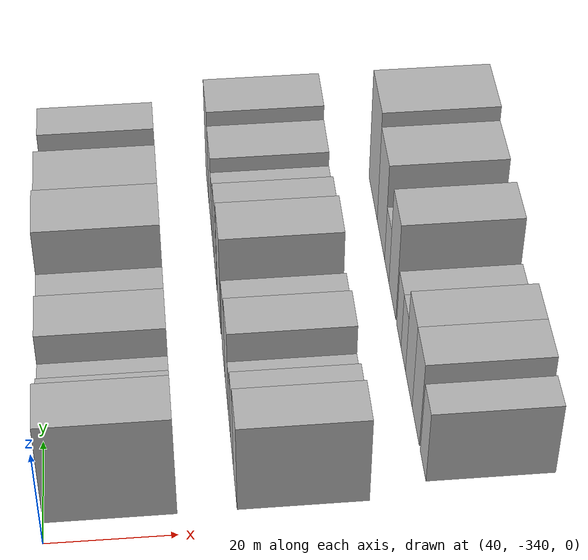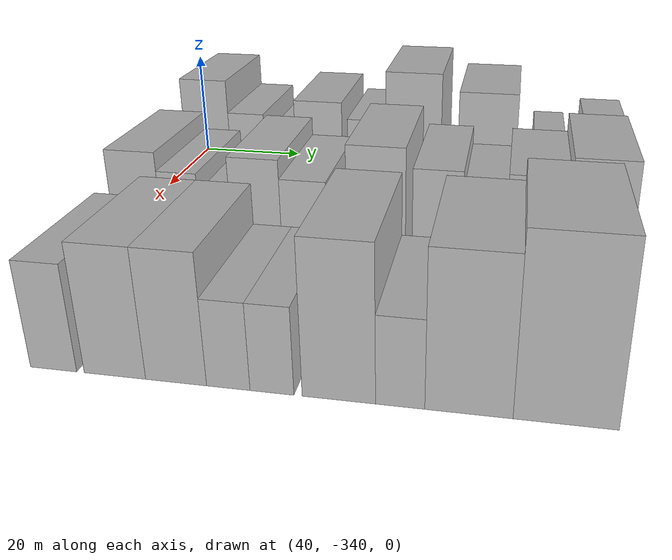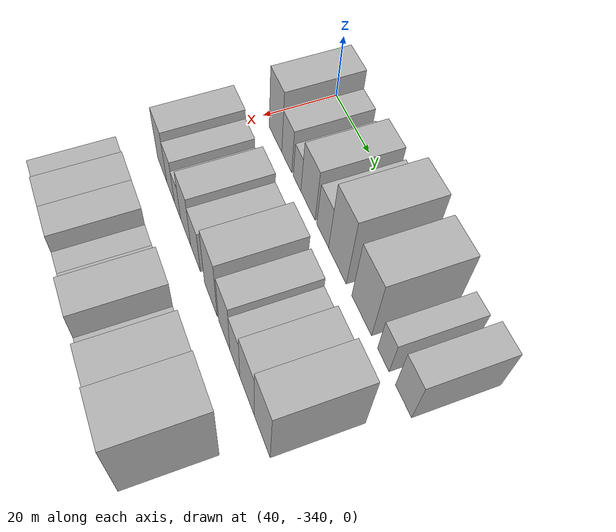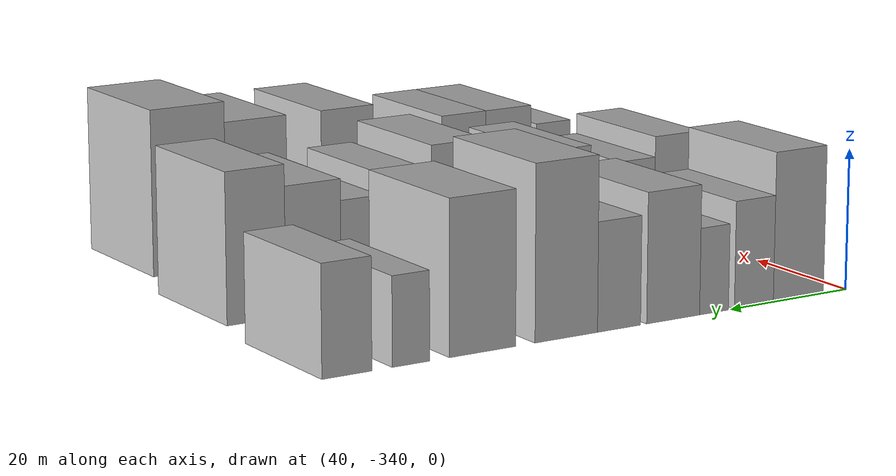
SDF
<sdf version="1.6">
 <world name="default">
  <model name="building_1">
   <static>1</static>
   <pose>50.0000 -331.6400 0 0.000000 0.000000 0.000000</pose>
   <link name="link">
    <pose>0 0 10.50 0 0 0</pose>
    <collision name="collision"><geometry><box><size>20.0000 8.7200 21.0000</size></box></geometry></collision>
    <visual name="visual">
     <cast_shadows>0</cast_shadows>
     <geometry><box><size>20.0000 8.7200 21.0000</size></box></geometry>
     <material>
      <script>
       <uri>model://HANNAS_wall/materials/scripts</uri>
       <uri>model://HANNAS_wall/materials/textures</uri>
       <name>vrc/HANNAS_wall</name>
      </script>
     </material>
    </visual>
   </link>
  </model>
  <model name="building_2">
   <static>1</static>
   <pose>50.0000 -323.9423 0 0.000000 0.000000 0.000000</pose>
   <link name="link">
    <pose>0 0 7.50 0 0 0</pose>
    <collision name="collision"><geometry><box><size>20.0000 6.6754 15.0000</size></box></geometry></collision>
    <visual name="visual">
     <cast_shadows>0</cast_shadows>
     <geometry><box><size>20.0000 6.6754 15.0000</size></box></geometry>
     <material>
      <script>
       <uri>model://HANNAS_wall/materials/scripts</uri>
       <uri>model://HANNAS_wall/materials/textures</uri>
       <name>vrc/HANNAS_wall</name>
      </script>
     </material>
    </visual>
   </link>
  </model>
  <model name="building_3">
   <static>1</static>
   <pose>50.0000 -317.1755 0 0.000000 0.000000 0.000000</pose>
   <link name="link">
    <pose>0 0 6.00 0 0 0</pose>
    <collision name="collision"><geometry><box><size>20.0000 4.8581 12.0000</size></box></geometry></collision>
    <visual name="visual">
     <cast_shadows>0</cast_shadows>
     <geometry><box><size>20.0000 4.8581 12.0000</size></box></geometry>
     <material>
      <script>
       <uri>model://HANNAS_wall/materials/scripts</uri>
       <uri>model://HANNAS_wall/materials/textures</uri>
       <name>vrc/HANNAS_wall</name>
      </script>
     </material>
    </visual>
   </link>
  </model>
  <model name="building_4">
   <static>1</static>
   <pose>50.0000 -310.3629 0 0.000000 0.000000 0.000000</pose>
   <link name="link">
    <pose>0 0 9.00 0 0 0</pose>
    <collision name="collision"><geometry><box><size>20.0000 8.7672 18.0000</size></box></geometry></collision>
    <visual name="visual">
     <cast_shadows>0</cast_shadows>
     <geometry><box><size>20.0000 8.7672 18.0000</size></box></geometry>
     <material>
      <script>
       <uri>model://HANNAS_wall/materials/scripts</uri>
       <uri>model://HANNAS_wall/materials/textures</uri>
       <name>vrc/HANNAS_wall</name>
      </script>
     </material>
    </visual>
   </link>
  </model>
  <model name="building_5">
   <static>1</static>
   <pose>50.0000 -301.4935 0 0.000000 0.000000 0.000000</pose>
   <link name="link">
    <pose>0 0 7.50 0 0 0</pose>
    <collision name="collision"><geometry><box><size>20.0000 6.9716 15.0000</size></box></geometry></collision>
    <visual name="visual">
     <cast_shadows>0</cast_shadows>
     <geometry><box><size>20.0000 6.9716 15.0000</size></box></geometry>
     <material>
      <script>
       <uri>model://HANNAS_wall/materials/scripts</uri>
       <uri>model://HANNAS_wall/materials/textures</uri>
       <name>vrc/HANNAS_wall</name>
      </script>
     </material>
    </visual>
   </link>
  </model>
  <model name="building_6">
   <static>1</static>
   <pose>50.0000 -293.0491 0 0.000000 0.000000 0.000000</pose>
   <link name="link">
    <pose>0 0 12.00 0 0 0</pose>
    <collision name="collision"><geometry><box><size>20.0000 9.9170 24.0000</size></box></geometry></collision>
    <visual name="visual">
     <cast_shadows>0</cast_shadows>
     <geometry><box><size>20.0000 9.9170 24.0000</size></box></geometry>
     <material>
      <script>
       <uri>model://HANNAS_wall/materials/scripts</uri>
       <uri>model://HANNAS_wall/materials/textures</uri>
       <name>vrc/HANNAS_wall</name>
      </script>
     </material>
    </visual>
   </link>
  </model>
  <model name="building_7">
   <static>1</static>
   <pose>50.0000 -280.0020 0 0.000000 0.000000 0.000000</pose>
   <link name="link">
    <pose>0 0 10.50 0 0 0</pose>
    <collision name="collision"><geometry><box><size>20.0000 10.1773 21.0000</size></box></geometry></collision>
    <visual name="visual">
     <cast_shadows>0</cast_shadows>
     <geometry><box><size>20.0000 10.1773 21.0000</size></box></geometry>
     <material>
      <script>
       <uri>model://HANNAS_wall/materials/scripts</uri>
       <uri>model://HANNAS_wall/materials/textures</uri>
       <name>vrc/HANNAS_wall</name>
      </script>
     </material>
    </visual>
   </link>
  </model>
  <model name="building_8">
   <static>1</static>
   <pose>50.0000 -269.1246 0 0.000000 0.000000 0.000000</pose>
   <link name="link">
    <pose>0 0 6.00 0 0 0</pose>
    <collision name="collision"><geometry><box><size>20.0000 5.5774 12.0000</size></box></geometry></collision>
    <visual name="visual">
     <cast_shadows>0</cast_shadows>
     <geometry><box><size>20.0000 5.5774 12.0000</size></box></geometry>
     <material>
      <script>
       <uri>model://HANNAS_wall/materials/scripts</uri>
       <uri>model://HANNAS_wall/materials/textures</uri>
       <name>vrc/HANNAS_wall</name>
      </script>
     </material>
    </visual>
   </link>
  </model>
  <model name="building_9">
   <static>1</static>
   <pose>50.0000 -259.6852 0 0.000000 0.000000 0.000000</pose>
   <link name="link">
    <pose>0 0 7.50 0 0 0</pose>
    <collision name="collision"><geometry><box><size>20.0000 7.3014 15.0000</size></box></geometry></collision>
    <visual name="visual">
     <cast_shadows>0</cast_shadows>
     <geometry><box><size>20.0000 7.3014 15.0000</size></box></geometry>
     <material>
      <script>
       <uri>model://HANNAS_wall/materials/scripts</uri>
       <uri>model://HANNAS_wall/materials/textures</uri>
       <name>vrc/HANNAS_wall</name>
      </script>
     </material>
    </visual>
   </link>
  </model>
  <model name="building_71">
   <static>1</static>
   <pose>79.0000 -332.0076 0 0.000000 0.000000 0.000000</pose>
   <link name="link">
    <pose>0 0 9.00 0 0 0</pose>
    <collision name="collision"><geometry><box><size>20.0000 7.9848 18.0000</size></box></geometry></collision>
    <visual name="visual">
     <cast_shadows>0</cast_shadows>
     <geometry><box><size>20.0000 7.9848 18.0000</size></box></geometry>
     <material>
      <script>
       <uri>model://HANNAS_wall/materials/scripts</uri>
       <uri>model://HANNAS_wall/materials/textures</uri>
       <name>vrc/HANNAS_wall</name>
      </script>
     </material>
    </visual>
   </link>
  </model>
  <model name="building_72">
   <static>1</static>
   <pose>79.0000 -324.8877 0 0.000000 0.000000 0.000000</pose>
   <link name="link">
    <pose>0 0 7.50 0 0 0</pose>
    <collision name="collision"><geometry><box><size>20.0000 6.2548 15.0000</size></box></geometry></collision>
    <visual name="visual">
     <cast_shadows>0</cast_shadows>
     <geometry><box><size>20.0000 6.2548 15.0000</size></box></geometry>
     <material>
      <script>
       <uri>model://HANNAS_wall/materials/scripts</uri>
       <uri>model://HANNAS_wall/materials/textures</uri>
       <name>vrc/HANNAS_wall</name>
      </script>
     </material>
    </visual>
   </link>
  </model>
  <model name="building_73">
   <static>1</static>
   <pose>79.0000 -319.2826 0 0.000000 0.000000 0.000000</pose>
   <link name="link">
    <pose>0 0 6.00 0 0 0</pose>
    <collision name="collision"><geometry><box><size>20.0000 4.9555 12.0000</size></box></geometry></collision>
    <visual name="visual">
     <cast_shadows>0</cast_shadows>
     <geometry><box><size>20.0000 4.9555 12.0000</size></box></geometry>
     <material>
      <script>
       <uri>model://HANNAS_wall/materials/scripts</uri>
       <uri>model://HANNAS_wall/materials/textures</uri>
       <name>vrc/HANNAS_wall</name>
      </script>
     </material>
    </visual>
   </link>
  </model>
  <model name="building_74">
   <static>1</static>
   <pose>79.0000 -312.9037 0 0.000000 0.000000 0.000000</pose>
   <link name="link">
    <pose>0 0 9.00 0 0 0</pose>
    <collision name="collision"><geometry><box><size>20.0000 7.8023 18.0000</size></box></geometry></collision>
    <visual name="visual">
     <cast_shadows>0</cast_shadows>
     <geometry><box><size>20.0000 7.8023 18.0000</size></box></geometry>
     <material>
      <script>
       <uri>model://HANNAS_wall/materials/scripts</uri>
       <uri>model://HANNAS_wall/materials/textures</uri>
       <name>vrc/HANNAS_wall</name>
      </script>
     </material>
    </visual>
   </link>
  </model>
  <model name="building_75">
   <static>1</static>
   <pose>79.0000 -305.4761 0 0.000000 0.000000 0.000000</pose>
   <link name="link">
    <pose>0 0 7.50 0 0 0</pose>
    <collision name="collision"><geometry><box><size>20.0000 7.0528 15.0000</size></box></geometry></collision>
    <visual name="visual">
     <cast_shadows>0</cast_shadows>
     <geometry><box><size>20.0000 7.0528 15.0000</size></box></geometry>
     <material>
      <script>
       <uri>model://HANNAS_wall/materials/scripts</uri>
       <uri>model://HANNAS_wall/materials/textures</uri>
       <name>vrc/HANNAS_wall</name>
      </script>
     </material>
    </visual>
   </link>
  </model>
  <model name="building_76">
   <static>1</static>
   <pose>79.0000 -294.5811 0 0.000000 0.000000 0.000000</pose>
   <link name="link">
    <pose>0 0 10.50 0 0 0</pose>
    <collision name="collision"><geometry><box><size>20.0000 8.7373 21.0000</size></box></geometry></collision>
    <visual name="visual">
     <cast_shadows>0</cast_shadows>
     <geometry><box><size>20.0000 8.7373 21.0000</size></box></geometry>
     <material>
      <script>
       <uri>model://HANNAS_wall/materials/scripts</uri>
       <uri>model://HANNAS_wall/materials/textures</uri>
       <name>vrc/HANNAS_wall</name>
      </script>
     </material>
    </visual>
   </link>
  </model>
  <model name="building_77">
   <static>1</static>
   <pose>79.0000 -285.6031 0 0.000000 0.000000 0.000000</pose>
   <link name="link">
    <pose>0 0 9.00 0 0 0</pose>
    <collision name="collision"><geometry><box><size>20.0000 7.2186 18.0000</size></box></geometry></collision>
    <visual name="visual">
     <cast_shadows>0</cast_shadows>
     <geometry><box><size>20.0000 7.2186 18.0000</size></box></geometry>
     <material>
      <script>
       <uri>model://HANNAS_wall/materials/scripts</uri>
       <uri>model://HANNAS_wall/materials/textures</uri>
       <name>vrc/HANNAS_wall</name>
      </script>
     </material>
    </visual>
   </link>
  </model>
  <model name="building_78">
   <static>1</static>
   <pose>79.0000 -278.8722 0 0.000000 0.000000 0.000000</pose>
   <link name="link">
    <pose>0 0 7.50 0 0 0</pose>
    <collision name="collision"><geometry><box><size>20.0000 6.2432 15.0000</size></box></geometry></collision>
    <visual name="visual">
     <cast_shadows>0</cast_shadows>
     <geometry><box><size>20.0000 6.2432 15.0000</size></box></geometry>
     <material>
      <script>
       <uri>model://HANNAS_wall/materials/scripts</uri>
       <uri>model://HANNAS_wall/materials/textures</uri>
       <name>vrc/HANNAS_wall</name>
      </script>
     </material>
    </visual>
   </link>
  </model>
  <model name="building_79">
   <static>1</static>
   <pose>79.0000 -271.4393 0 0.000000 0.000000 0.000000</pose>
   <link name="link">
    <pose>0 0 9.00 0 0 0</pose>
    <collision name="collision"><geometry><box><size>20.0000 8.6226 18.0000</size></box></geometry></collision>
    <visual name="visual">
     <cast_shadows>0</cast_shadows>
     <geometry><box><size>20.0000 8.6226 18.0000</size></box></geometry>
     <material>
      <script>
       <uri>model://HANNAS_wall/materials/scripts</uri>
       <uri>model://HANNAS_wall/materials/textures</uri>
       <name>vrc/HANNAS_wall</name>
      </script>
     </material>
    </visual>
   </link>
  </model>
  <model name="building_80">
   <static>1</static>
   <pose>79.0000 -262.6434 0 0.000000 0.000000 0.000000</pose>
   <link name="link">
    <pose>0 0 10.50 0 0 0</pose>
    <collision name="collision"><geometry><box><size>20.0000 8.9692 21.0000</size></box></geometry></collision>
    <visual name="visual">
     <cast_shadows>0</cast_shadows>
     <geometry><box><size>20.0000 8.9692 21.0000</size></box></geometry>
     <material>
      <script>
       <uri>model://HANNAS_wall/materials/scripts</uri>
       <uri>model://HANNAS_wall/materials/textures</uri>
       <name>vrc/HANNAS_wall</name>
      </script>
     </material>
    </visual>
   </link>
  </model>
  <model name="building_151">
   <static>1</static>
   <pose>108.0000 -329.9116 0 0.000000 0.000000 0.000000</pose>
   <link name="link">
    <pose>0 0 7.50 0 0 0</pose>
    <collision name="collision"><geometry><box><size>20.0000 6.1767 15.0000</size></box></geometry></collision>
    <visual name="visual">
     <cast_shadows>0</cast_shadows>
     <geometry><box><size>20.0000 6.1767 15.0000</size></box></geometry>
     <material>
      <script>
       <uri>model://HANNAS_wall/materials/scripts</uri>
       <uri>model://HANNAS_wall/materials/textures</uri>
       <name>vrc/HANNAS_wall</name>
      </script>
     </material>
    </visual>
   </link>
  </model>
  <model name="building_152">
   <static>1</static>
   <pose>108.0000 -321.8058 0 0.000000 0.000000 0.000000</pose>
   <link name="link">
    <pose>0 0 9.00 0 0 0</pose>
    <collision name="collision"><geometry><box><size>20.0000 8.0349 18.0000</size></box></geometry></collision>
    <visual name="visual">
     <cast_shadows>0</cast_shadows>
     <geometry><box><size>20.0000 8.0349 18.0000</size></box></geometry>
     <material>
      <script>
       <uri>model://HANNAS_wall/materials/scripts</uri>
       <uri>model://HANNAS_wall/materials/textures</uri>
       <name>vrc/HANNAS_wall</name>
      </script>
     </material>
    </visual>
   </link>
  </model>
  <model name="building_153">
   <static>1</static>
   <pose>108.0000 -313.9029 0 0.000000 0.000000 0.000000</pose>
   <link name="link">
    <pose>0 0 9.00 0 0 0</pose>
    <collision name="collision"><geometry><box><size>20.0000 7.7710 18.0000</size></box></geometry></collision>
    <visual name="visual">
     <cast_shadows>0</cast_shadows>
     <geometry><box><size>20.0000 7.7710 18.0000</size></box></geometry>
     <material>
      <script>
       <uri>model://HANNAS_wall/materials/scripts</uri>
       <uri>model://HANNAS_wall/materials/textures</uri>
       <name>vrc/HANNAS_wall</name>
      </script>
     </material>
    </visual>
   </link>
  </model>
  <model name="building_154">
   <static>1</static>
   <pose>108.0000 -307.3051 0 0.000000 0.000000 0.000000</pose>
   <link name="link">
    <pose>0 0 6.00 0 0 0</pose>
    <collision name="collision"><geometry><box><size>20.0000 5.4244 12.0000</size></box></geometry></collision>
    <visual name="visual">
     <cast_shadows>0</cast_shadows>
     <geometry><box><size>20.0000 5.4244 12.0000</size></box></geometry>
     <material>
      <script>
       <uri>model://HANNAS_wall/materials/scripts</uri>
       <uri>model://HANNAS_wall/materials/textures</uri>
       <name>vrc/HANNAS_wall</name>
      </script>
     </material>
    </visual>
   </link>
  </model>
  <model name="building_155">
   <static>1</static>
   <pose>108.0000 -301.9004 0 0.000000 0.000000 0.000000</pose>
   <link name="link">
    <pose>0 0 6.00 0 0 0</pose>
    <collision name="collision"><geometry><box><size>20.0000 5.3851 12.0000</size></box></geometry></collision>
    <visual name="visual">
     <cast_shadows>0</cast_shadows>
     <geometry><box><size>20.0000 5.3851 12.0000</size></box></geometry>
     <material>
      <script>
       <uri>model://HANNAS_wall/materials/scripts</uri>
       <uri>model://HANNAS_wall/materials/textures</uri>
       <name>vrc/HANNAS_wall</name>
      </script>
     </material>
    </visual>
   </link>
  </model>
  <model name="building_156">
   <static>1</static>
   <pose>108.0000 -293.8176 0 0.000000 0.000000 0.000000</pose>
   <link name="link">
    <pose>0 0 10.50 0 0 0</pose>
    <collision name="collision"><geometry><box><size>20.0000 8.7806 21.0000</size></box></geometry></collision>
    <visual name="visual">
     <cast_shadows>0</cast_shadows>
     <geometry><box><size>20.0000 8.7806 21.0000</size></box></geometry>
     <material>
      <script>
       <uri>model://HANNAS_wall/materials/scripts</uri>
       <uri>model://HANNAS_wall/materials/textures</uri>
       <name>vrc/HANNAS_wall</name>
      </script>
     </material>
    </visual>
   </link>
  </model>
  <model name="building_157">
   <static>1</static>
   <pose>108.0000 -286.5518 0 0.000000 0.000000 0.000000</pose>
   <link name="link">
    <pose>0 0 6.00 0 0 0</pose>
    <collision name="collision"><geometry><box><size>20.0000 5.7510 12.0000</size></box></geometry></collision>
    <visual name="visual">
     <cast_shadows>0</cast_shadows>
     <geometry><box><size>20.0000 5.7510 12.0000</size></box></geometry>
     <material>
      <script>
       <uri>model://HANNAS_wall/materials/scripts</uri>
       <uri>model://HANNAS_wall/materials/textures</uri>
       <name>vrc/HANNAS_wall</name>
      </script>
     </material>
    </visual>
   </link>
  </model>
  <model name="building_158">
   <static>1</static>
   <pose>108.0000 -278.6593 0 0.000000 0.000000 0.000000</pose>
   <link name="link">
    <pose>0 0 10.50 0 0 0</pose>
    <collision name="collision"><geometry><box><size>20.0000 10.0339 21.0000</size></box></geometry></collision>
    <visual name="visual">
     <cast_shadows>0</cast_shadows>
     <geometry><box><size>20.0000 10.0339 21.0000</size></box></geometry>
     <material>
      <script>
       <uri>model://HANNAS_wall/materials/scripts</uri>
       <uri>model://HANNAS_wall/materials/textures</uri>
       <name>vrc/HANNAS_wall</name>
      </script>
     </material>
    </visual>
   </link>
  </model>
  <model name="building_159">
   <static>1</static>
   <pose>108.0000 -267.8089 0 0.000000 0.000000 0.000000</pose>
   <link name="link">
    <pose>0 0 12.00 0 0 0</pose>
    <collision name="collision"><geometry><box><size>20.0000 11.6669 24.0000</size></box></geometry></collision>
    <visual name="visual">
     <cast_shadows>0</cast_shadows>
     <geometry><box><size>20.0000 11.6669 24.0000</size></box></geometry>
     <material>
      <script>
       <uri>model://HANNAS_wall/materials/scripts</uri>
       <uri>model://HANNAS_wall/materials/textures</uri>
       <name>vrc/HANNAS_wall</name>
      </script>
     </material>
    </visual>
   </link>
  </model>
 </world>
</sdf>
